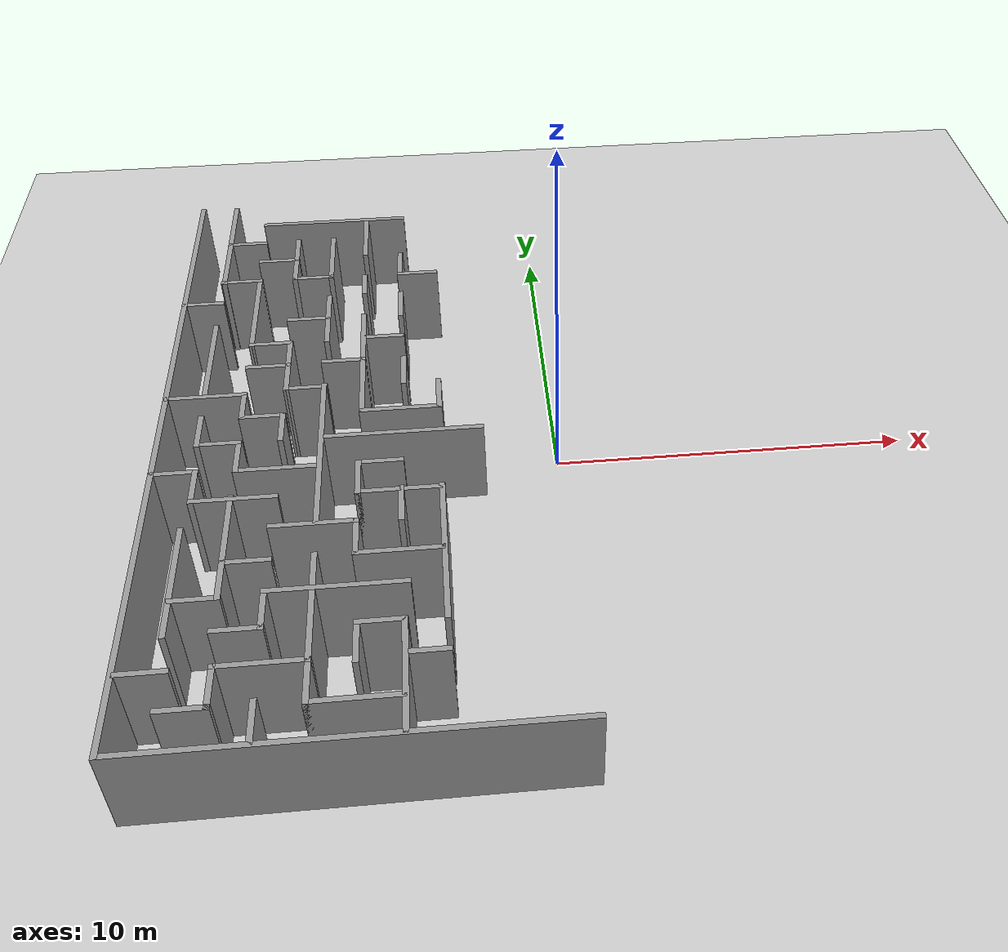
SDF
<sdf version="1.7">
 <world name="default">
  <model name="ground_plane">
   <static>1</static>
   <link name="link">
    <collision name="collision">
     <geometry><plane><normal>0 0 1</normal><size>100 100</size></plane></geometry>
     <surface><friction><ode><mu>100</mu><mu2>50</mu2></ode></friction></surface>
    </collision>
    <visual name="visual">
     <cast_shadows>0</cast_shadows>
     <geometry><plane><normal>0 0 1</normal><size>100 100</size></plane></geometry>
     <material>
      <script><uri>file://media/materials/scripts/gazebo.material</uri><name>Gazebo/Grey</name></script>
     </material>
    </visual>
   </link>
  </model>
  <model name="Maze_ej4">
   <pose>-0.00055 0.06164 0 0 -0 0</pose>
   <link name="Wall_100">
    <collision name="Wall_100_Collision">
     <geometry><box><size>1.25 0.15 2.5</size></box></geometry>
     <pose>0 0 1.25 0 -0 0</pose>
    </collision>
    <visual name="Wall_100_Visual">
     <pose>0 0 1.25 0 -0 0</pose>
     <geometry><box><size>1.25 0.15 2.5</size></box></geometry>
     <material>
      <script><uri>file://media/materials/scripts/gazebo.material</uri><name>Gazebo/Grey</name></script>
      <ambient>1 1 1 1</ambient>
     </material>
     <meta><layer>0</layer></meta>
    </visual>
    <pose>-7.51415 -6.98122 0 0 -0 -1.5708</pose>
   </link>
   <link name="Wall_101">
    <collision name="Wall_101_Collision">
     <geometry><box><size>1.25 0.15 2.5</size></box></geometry>
     <pose>0 0 1.25 0 -0 0</pose>
    </collision>
    <visual name="Wall_101_Visual">
     <pose>0 0 1.25 0 -0 0</pose>
     <geometry><box><size>1.25 0.15 2.5</size></box></geometry>
     <material>
      <script><uri>file://media/materials/scripts/gazebo.material</uri><name>Gazebo/Grey</name></script>
      <ambient>1 1 1 1</ambient>
     </material>
     <meta><layer>0</layer></meta>
    </visual>
    <pose>-8.06415 -7.53122 0 0 -0 3.14159</pose>
   </link>
   <link name="Wall_106">
    <collision name="Wall_106_Collision">
     <geometry><box><size>1 0.15 2.5</size></box></geometry>
     <pose>0 0 1.25 0 -0 0</pose>
    </collision>
    <visual name="Wall_106_Visual">
     <pose>0 0 1.25 0 -0 0</pose>
     <geometry><box><size>1 0.15 2.5</size></box></geometry>
     <material>
      <script><uri>file://media/materials/scripts/gazebo.material</uri><name>Gazebo/Grey</name></script>
      <ambient>1 1 1 1</ambient>
     </material>
     <meta><layer>0</layer></meta>
    </visual>
    <pose>-3.6867 -8.55744 0 0 -0 3.14159</pose>
   </link>
   <link name="Wall_17">
    <collision name="Wall_17_Collision">
     <geometry><box><size>21.5 0.15 2.5</size></box></geometry>
     <pose>0 0 1.25 0 -0 0</pose>
    </collision>
    <visual name="Wall_17_Visual">
     <pose>0 0 1.25 0 -0 0</pose>
     <geometry><box><size>21.5 0.15 2.5</size></box></geometry>
     <material>
      <script><uri>file://media/materials/scripts/gazebo.material</uri><name>Gazebo/Grey</name></script>
      <ambient>1 1 1 1</ambient>
     </material>
     <meta><layer>0</layer></meta>
    </visual>
    <pose>-10.6833 -0.028895 0 0 -0 -1.5708</pose>
   </link>
   <link name="Wall_18">
    <collision name="Wall_18_Collision">
     <geometry><box><size>10.75 0.15 2.5</size></box></geometry>
     <pose>0 0 1.25 0 -0 0</pose>
    </collision>
    <visual name="Wall_18_Visual">
     <pose>0 0 1.25 0 -0 0</pose>
     <geometry><box><size>10.75 0.15 2.5</size></box></geometry>
     <material>
      <script><uri>file://media/materials/scripts/gazebo.material</uri><name>Gazebo/Grey</name></script>
      <ambient>1 1 1 1</ambient>
     </material>
     <meta><layer>0</layer></meta>
    </visual>
    <pose>-5.38333 -10.7039 0 0 -0 0</pose>
   </link>
   <link name="Wall_185">
    <collision name="Wall_185_Collision">
     <geometry><box><size>1.25 0.15 2.5</size></box></geometry>
     <pose>0 0 1.25 0 -0 0</pose>
    </collision>
    <visual name="Wall_185_Visual">
     <pose>0 0 1.25 0 -0 0</pose>
     <geometry><box><size>1.25 0.15 2.5</size></box></geometry>
     <material>
      <script><uri>file://media/materials/scripts/gazebo.material</uri><name>Gazebo/Grey</name></script>
      <ambient>1 1 1 1</ambient>
     </material>
     <meta><layer>0</layer></meta>
    </visual>
    <pose>-4.84871 -2.18206 0 0 -0 3.14159</pose>
   </link>
   <link name="Wall_186">
    <collision name="Wall_186_Collision">
     <geometry><box><size>1.25 0.15 2.5</size></box></geometry>
     <pose>0 0 1.25 0 -0 0</pose>
    </collision>
    <visual name="Wall_186_Visual">
     <pose>0 0 1.25 0 -0 0</pose>
     <geometry><box><size>1.25 0.15 2.5</size></box></geometry>
     <material>
      <script><uri>file://media/materials/scripts/gazebo.material</uri><name>Gazebo/Grey</name></script>
      <ambient>1 1 1 1</ambient>
     </material>
     <meta><layer>0</layer></meta>
    </visual>
    <pose>-5.39871 -2.73206 0 0 -0 -1.5708</pose>
   </link>
   <link name="Wall_187">
    <collision name="Wall_187_Collision">
     <geometry><box><size>2.25 0.15 2.5</size></box></geometry>
     <pose>0 0 1.25 0 -0 0</pose>
    </collision>
    <visual name="Wall_187_Visual">
     <pose>0 0 1.25 0 -0 0</pose>
     <geometry><box><size>2.25 0.15 2.5</size></box></geometry>
     <material>
      <script><uri>file://media/materials/scripts/gazebo.material</uri><name>Gazebo/Grey</name></script>
      <ambient>1 1 1 1</ambient>
     </material>
     <meta><layer>0</layer></meta>
    </visual>
    <pose>-4.34871 -3.28206 0 0 -0 0</pose>
   </link>
   <link name="Wall_189">
    <collision name="Wall_189_Collision">
     <geometry><box><size>1.25 0.15 2.5</size></box></geometry>
     <pose>0 0 1.25 0 -0 0</pose>
    </collision>
    <visual name="Wall_189_Visual">
     <pose>0 0 1.25 0 -0 0</pose>
     <geometry><box><size>1.25 0.15 2.5</size></box></geometry>
     <material>
      <script><uri>file://media/materials/scripts/gazebo.material</uri><name>Gazebo/Grey</name></script>
      <ambient>1 1 1 1</ambient>
     </material>
     <meta><layer>0</layer></meta>
    </visual>
    <pose>-4.29871 -3.78608 0 0 -0 -1.5708</pose>
   </link>
   <link name="Wall_206">
    <collision name="Wall_206_Collision">
     <geometry><box><size>4.25 0.15 2.5</size></box></geometry>
     <pose>0 0 1.25 0 -0 0</pose>
    </collision>
    <visual name="Wall_206_Visual">
     <pose>0 0 1.25 0 -0 0</pose>
     <geometry><box><size>4.25 0.15 2.5</size></box></geometry>
     <material>
      <script><uri>file://media/materials/scripts/gazebo.material</uri><name>Gazebo/Grey</name></script>
      <ambient>1 1 1 1</ambient>
     </material>
     <meta><layer>0</layer></meta>
    </visual>
    <pose>-4.21368 -1.08331 0 0 -0 3.14159</pose>
   </link>
   <link name="Wall_212">
    <collision name="Wall_212_Collision">
     <geometry><box><size>4.5 0.15 2.5</size></box></geometry>
     <pose>0 0 1.25 0 -0 0</pose>
    </collision>
    <visual name="Wall_212_Visual">
     <pose>0 0 1.25 0 -0 0</pose>
     <geometry><box><size>4.5 0.15 2.5</size></box></geometry>
     <material>
      <script><uri>file://media/materials/scripts/gazebo.material</uri><name>Gazebo/Grey</name></script>
      <ambient>1 1 1 1</ambient>
     </material>
     <meta><layer>0</layer></meta>
    </visual>
    <pose>-5.34212 2.06902 0 0 -0 -1.5708</pose>
   </link>
   <link name="Wall_213">
    <collision name="Wall_213_Collision">
     <geometry><box><size>2.25 0.15 2.5</size></box></geometry>
     <pose>0 0 1.25 0 -0 0</pose>
    </collision>
    <visual name="Wall_213_Visual">
     <pose>0 0 1.25 0 -0 0</pose>
     <geometry><box><size>2.25 0.15 2.5</size></box></geometry>
     <material>
      <script><uri>file://media/materials/scripts/gazebo.material</uri><name>Gazebo/Grey</name></script>
      <ambient>1 1 1 1</ambient>
     </material>
     <meta><layer>0</layer></meta>
    </visual>
    <pose>-4.29212 -0.105982 0 0 -0 0</pose>
   </link>
   <link name="Wall_214">
    <collision name="Wall_214_Collision">
     <geometry><box><size>1.25 0.15 2.5</size></box></geometry>
     <pose>0 0 1.25 0 -0 0</pose>
    </collision>
    <visual name="Wall_214_Visual">
     <pose>0 0 1.25 0 -0 0</pose>
     <geometry><box><size>1.25 0.15 2.5</size></box></geometry>
     <material>
      <script><uri>file://media/materials/scripts/gazebo.material</uri><name>Gazebo/Grey</name></script>
      <ambient>1 1 1 1</ambient>
     </material>
     <meta><layer>0</layer></meta>
    </visual>
    <pose>-3.24212 0.444018 0 0 -0 1.5708</pose>
   </link>
   <link name="Wall_241">
    <collision name="Wall_241_Collision">
     <geometry><box><size>1.25 0.15 2.5</size></box></geometry>
     <pose>0 0 1.25 0 -0 0</pose>
    </collision>
    <visual name="Wall_241_Visual">
     <pose>0 0 1.25 0 -0 0</pose>
     <geometry><box><size>1.25 0.15 2.5</size></box></geometry>
     <material>
      <script><uri>file://media/materials/scripts/gazebo.material</uri><name>Gazebo/Grey</name></script>
      <ambient>1 1 1 1</ambient>
     </material>
     <meta><layer>0</layer></meta>
    </visual>
    <pose>-4.20011 1.54857 0 0 -0 -1.5708</pose>
   </link>
   <link name="Wall_243">
    <collision name="Wall_243_Collision">
     <geometry><box><size>1.25 0.15 2.5</size></box></geometry>
     <pose>0 0 1.25 0 -0 0</pose>
    </collision>
    <visual name="Wall_243_Visual">
     <pose>0 0 1.25 0 -0 0</pose>
     <geometry><box><size>1.25 0.15 2.5</size></box></geometry>
     <material>
      <script><uri>file://media/materials/scripts/gazebo.material</uri><name>Gazebo/Grey</name></script>
      <ambient>1 1 1 1</ambient>
     </material>
     <meta><layer>0</layer></meta>
    </visual>
    <pose>-4.79212 3.17924 0 0 -0 0</pose>
   </link>
   <link name="Wall_245">
    <collision name="Wall_245_Collision">
     <geometry><box><size>1.25 0.15 2.5</size></box></geometry>
     <pose>0 0 1.25 0 -0 0</pose>
    </collision>
    <visual name="Wall_245_Visual">
     <pose>0 0 1.25 0 -0 0</pose>
     <geometry><box><size>1.25 0.15 2.5</size></box></geometry>
     <material>
      <script><uri>file://media/materials/scripts/gazebo.material</uri><name>Gazebo/Grey</name></script>
      <ambient>1 1 1 1</ambient>
     </material>
     <meta><layer>0</layer></meta>
    </visual>
    <pose>-5.89212 2.14625 0 0 -0 3.14159</pose>
   </link>
   <link name="Wall_250">
    <collision name="Wall_250_Collision">
     <geometry><box><size>1.25 0.15 2.5</size></box></geometry>
     <pose>0 0 1.25 0 -0 0</pose>
    </collision>
    <visual name="Wall_250_Visual">
     <pose>0 0 1.25 0 -0 0</pose>
     <geometry><box><size>1.25 0.15 2.5</size></box></geometry>
     <material>
      <script><uri>file://media/materials/scripts/gazebo.material</uri><name>Gazebo/Grey</name></script>
      <ambient>1 1 1 1</ambient>
     </material>
     <meta><layer>0</layer></meta>
    </visual>
    <pose>-10.1353 5.2929 0 0 -0 3.14159</pose>
   </link>
   <link name="Wall_29">
    <collision name="Wall_29_Collision">
     <geometry><box><size>4.5 0.15 2.5</size></box></geometry>
     <pose>0 0 1.25 0 -0 0</pose>
    </collision>
    <visual name="Wall_29_Visual">
     <pose>0 0 1.25 0 -0 0</pose>
     <geometry><box><size>4.5 0.15 2.5</size></box></geometry>
     <material>
      <script><uri>file://media/materials/scripts/gazebo.material</uri><name>Gazebo/Grey</name></script>
      <ambient>1 1 1 1</ambient>
     </material>
     <meta><layer>0</layer></meta>
    </visual>
    <pose>-3.2617 -5.41689 0 0 -0 -1.5708</pose>
   </link>
   <link name="Wall_295">
    <collision name="Wall_295_Collision">
     <geometry><box><size>2.31157 0.15 2.5</size></box></geometry>
     <pose>0 0 1.25 0 -0 0</pose>
    </collision>
    <visual name="Wall_295_Visual">
     <pose>0 0 1.25 0 -0 0</pose>
     <geometry><box><size>2.31157 0.15 2.5</size></box></geometry>
     <material>
      <script><uri>file://media/materials/scripts/gazebo.material</uri><name>Gazebo/Grey</name></script>
      <ambient>1 1 1 1</ambient>
     </material>
     <meta><layer>0</layer></meta>
    </visual>
    <pose>-6.39101 4.21223 0 0 -0 -1.5708</pose>
   </link>
   <link name="Wall_299">
    <collision name="Wall_299_Collision">
     <geometry><box><size>1.25 0.15 2.5</size></box></geometry>
     <pose>0 0 1.25 0 -0 0</pose>
    </collision>
    <visual name="Wall_299_Visual">
     <pose>0 0 1.25 0 -0 0</pose>
     <geometry><box><size>1.25 0.15 2.5</size></box></geometry>
     <material>
      <script><uri>file://media/materials/scripts/gazebo.material</uri><name>Gazebo/Grey</name></script>
      <ambient>1 1 1 1</ambient>
     </material>
     <meta><layer>0</layer></meta>
    </visual>
    <pose>-6.97279 4.24402 0 0 -0 3.14159</pose>
   </link>
   <link name="Wall_301">
    <collision name="Wall_301_Collision">
     <geometry><box><size>1.25 0.15 2.5</size></box></geometry>
     <pose>0 0 1.25 0 -0 0</pose>
    </collision>
    <visual name="Wall_301_Visual">
     <pose>0 0 1.25 0 -0 0</pose>
     <geometry><box><size>1.25 0.15 2.5</size></box></geometry>
     <material>
      <script><uri>file://media/materials/scripts/gazebo.material</uri><name>Gazebo/Grey</name></script>
      <ambient>1 1 1 1</ambient>
     </material>
     <meta><layer>0</layer></meta>
    </visual>
    <pose>-9.08302 6.37357 0 0 -0 0</pose>
   </link>
   <link name="Wall_302">
    <collision name="Wall_302_Collision">
     <geometry><box><size>3.39201 0.15 2.5</size></box></geometry>
     <pose>0 0 1.25 0 -0 0</pose>
    </collision>
    <visual name="Wall_302_Visual">
     <pose>0 0 1.25 0 -0 0</pose>
     <geometry><box><size>3.39201 0.15 2.5</size></box></geometry>
     <material>
      <script><uri>file://media/materials/scripts/gazebo.material</uri><name>Gazebo/Grey</name></script>
      <ambient>1 1 1 1</ambient>
     </material>
     <meta><layer>0</layer></meta>
    </visual>
    <pose>-8.53473 4.75257 0 0 -0 -1.57186</pose>
   </link>
   <link name="Wall_303">
    <collision name="Wall_303_Collision">
     <geometry><box><size>1.25 0.15 2.5</size></box></geometry>
     <pose>0 0 1.25 0 -0 0</pose>
    </collision>
    <visual name="Wall_303_Visual">
     <pose>0 0 1.25 0 -0 0</pose>
     <geometry><box><size>1.25 0.15 2.5</size></box></geometry>
     <material>
      <script><uri>file://media/materials/scripts/gazebo.material</uri><name>Gazebo/Grey</name></script>
      <ambient>1 1 1 1</ambient>
     </material>
     <meta><layer>0</layer></meta>
    </visual>
    <pose>-7.98645 3.13156 0 0 -0 0</pose>
   </link>
   <link name="Wall_304">
    <collision name="Wall_304_Collision">
     <geometry><box><size>2.25 0.15 2.5</size></box></geometry>
     <pose>0 0 1.25 0 -0 0</pose>
    </collision>
    <visual name="Wall_304_Visual">
     <pose>0 0 1.25 0 -0 0</pose>
     <geometry><box><size>2.25 0.15 2.5</size></box></geometry>
     <material>
      <script><uri>file://media/materials/scripts/gazebo.material</uri><name>Gazebo/Grey</name></script>
      <ambient>1 1 1 1</ambient>
     </material>
     <meta><layer>0</layer></meta>
    </visual>
    <pose>-7.43645 2.08156 0 0 -0 -1.5708</pose>
   </link>
   <link name="Wall_305">
    <collision name="Wall_305_Collision">
     <geometry><box><size>1.21189 0.15 2.5</size></box></geometry>
     <pose>0 0 1.25 0 -0 0</pose>
    </collision>
    <visual name="Wall_305_Visual">
     <pose>0 0 1.25 0 -0 0</pose>
     <geometry><box><size>1.21189 0.15 2.5</size></box></geometry>
     <material>
      <script><uri>file://media/materials/scripts/gazebo.material</uri><name>Gazebo/Grey</name></script>
      <ambient>1 1 1 1</ambient>
     </material>
     <meta><layer>0</layer></meta>
    </visual>
    <pose>-6.90578 1.03268 0 0 -0 0.0021</pose>
   </link>
   <link name="Wall_307">
    <collision name="Wall_307_Collision">
     <geometry><box><size>1.25 0.15 2.5</size></box></geometry>
     <pose>0 0 1.25 0 -0 0</pose>
    </collision>
    <visual name="Wall_307_Visual">
     <pose>0 0 1.25 0 -0 0</pose>
     <geometry><box><size>1.25 0.15 2.5</size></box></geometry>
     <material>
      <script><uri>file://media/materials/scripts/gazebo.material</uri><name>Gazebo/Grey</name></script>
      <ambient>1 1 1 1</ambient>
     </material>
     <meta><layer>0</layer></meta>
    </visual>
    <pose>-8.00235 2.08268 0 0 -0 0</pose>
   </link>
   <link name="Wall_309">
    <collision name="Wall_309_Collision">
     <geometry><box><size>1.25 0.15 2.5</size></box></geometry>
     <pose>0 0 1.25 0 -0 0</pose>
    </collision>
    <visual name="Wall_309_Visual">
     <pose>0 0 1.25 0 -0 0</pose>
     <geometry><box><size>1.25 0.15 2.5</size></box></geometry>
     <material>
      <script><uri>file://media/materials/scripts/gazebo.material</uri><name>Gazebo/Grey</name></script>
      <ambient>1 1 1 1</ambient>
     </material>
     <meta><layer>0</layer></meta>
    </visual>
    <pose>-4.26145 4.7429 0 0 -0 -1.5708</pose>
   </link>
   <link name="Wall_311">
    <collision name="Wall_311_Collision">
     <geometry><box><size>4.39396 0.15 2.5</size></box></geometry>
     <pose>0 0 1.25 0 -0 0</pose>
    </collision>
    <visual name="Wall_311_Visual">
     <pose>0 0 1.25 0 -0 0</pose>
     <geometry><box><size>4.39396 0.15 2.5</size></box></geometry>
     <material>
      <script><uri>file://media/materials/scripts/gazebo.material</uri><name>Gazebo/Grey</name></script>
      <ambient>1 1 1 1</ambient>
     </material>
     <meta><layer>0</layer></meta>
    </visual>
    <pose>-9.60123 8.4634 0 0 -0 -1.5708</pose>
   </link>
   <link name="Wall_313">
    <collision name="Wall_313_Collision">
     <geometry><box><size>1.21525 0.15 2.5</size></box></geometry>
     <pose>0 0 1.25 0 -0 0</pose>
    </collision>
    <visual name="Wall_313_Visual">
     <pose>0 0 1.25 0 -0 0</pose>
     <geometry><box><size>1.21525 0.15 2.5</size></box></geometry>
     <material>
      <script><uri>file://media/materials/scripts/gazebo.material</uri><name>Gazebo/Grey</name></script>
      <ambient>1 1 1 1</ambient>
     </material>
     <meta><layer>0</layer></meta>
    </visual>
    <pose>-9.06884 8.47134 0 0 -0 3.14159</pose>
   </link>
   <link name="Wall_315">
    <collision name="Wall_315_Collision">
     <geometry><box><size>4.5 0.15 2.5</size></box></geometry>
     <pose>0 0 1.25 0 -0 0</pose>
    </collision>
    <visual name="Wall_315_Visual">
     <pose>0 0 1.25 0 -0 0</pose>
     <geometry><box><size>4.5 0.15 2.5</size></box></geometry>
     <material>
      <script><uri>file://media/materials/scripts/gazebo.material</uri><name>Gazebo/Grey</name></script>
      <ambient>1 1 1 1</ambient>
     </material>
     <meta><layer>0</layer></meta>
    </visual>
    <pose>-6.37735 9.55201 0 0 -0 0</pose>
   </link>
   <link name="Wall_35">
    <collision name="Wall_35_Collision">
     <geometry><box><size>5.5 0.15 2.5</size></box></geometry>
     <pose>0 0 1.25 0 -0 0</pose>
    </collision>
    <visual name="Wall_35_Visual">
     <pose>0 0 1.25 0 -0 0</pose>
     <geometry><box><size>5.5 0.15 2.5</size></box></geometry>
     <material>
      <script><uri>file://media/materials/scripts/gazebo.material</uri><name>Gazebo/Grey</name></script>
      <ambient>1 1 1 1</ambient>
     </material>
     <meta><layer>0</layer></meta>
    </visual>
    <pose>-6.39652 -1.60992 0 0 -0 -1.5708</pose>
   </link>
   <link name="Wall_37">
    <collision name="Wall_37_Collision">
     <geometry><box><size>2.25 0.15 2.5</size></box></geometry>
     <pose>0 0 1.25 0 -0 0</pose>
    </collision>
    <visual name="Wall_37_Visual">
     <pose>0 0 1.25 0 -0 0</pose>
     <geometry><box><size>2.25 0.15 2.5</size></box></geometry>
     <material>
      <script><uri>file://media/materials/scripts/gazebo.material</uri><name>Gazebo/Grey</name></script>
      <ambient>1 1 1 1</ambient>
     </material>
     <meta><layer>0</layer></meta>
    </visual>
    <pose>-6.46415 -4.305 0 0 -0 0</pose>
   </link>
   <link name="Wall_39">
    <collision name="Wall_39_Collision">
     <geometry><box><size>1.25 0.15 2.5</size></box></geometry>
     <pose>0 0 1.25 0 -0 0</pose>
    </collision>
    <visual name="Wall_39_Visual">
     <pose>0 0 1.25 0 -0 0</pose>
     <geometry><box><size>1.25 0.15 2.5</size></box></geometry>
     <material>
      <script><uri>file://media/materials/scripts/gazebo.material</uri><name>Gazebo/Grey</name></script>
      <ambient>1 1 1 1</ambient>
     </material>
     <meta><layer>0</layer></meta>
    </visual>
    <pose>-5.41415 -4.855 0 0 -0 -1.5708</pose>
   </link>
   <link name="Wall_40">
    <collision name="Wall_40_Collision">
     <geometry><box><size>2.25 0.15 2.5</size></box></geometry>
     <pose>0 0 1.25 0 -0 0</pose>
    </collision>
    <visual name="Wall_40_Visual">
     <pose>0 0 1.25 0 -0 0</pose>
     <geometry><box><size>2.25 0.15 2.5</size></box></geometry>
     <material>
      <script><uri>file://media/materials/scripts/gazebo.material</uri><name>Gazebo/Grey</name></script>
      <ambient>1 1 1 1</ambient>
     </material>
     <meta><layer>0</layer></meta>
    </visual>
    <pose>-4.36415 -5.405 0 0 -0 0</pose>
   </link>
   <link name="Wall_42">
    <collision name="Wall_42_Collision">
     <geometry><box><size>4.5 0.15 2.5</size></box></geometry>
     <pose>0 0 1.25 0 -0 0</pose>
    </collision>
    <visual name="Wall_42_Visual">
     <pose>0 0 1.25 0 -0 0</pose>
     <geometry><box><size>4.5 0.15 2.5</size></box></geometry>
     <material>
      <script><uri>file://media/materials/scripts/gazebo.material</uri><name>Gazebo/Grey</name></script>
      <ambient>1 1 1 1</ambient>
     </material>
     <meta><layer>0</layer></meta>
    </visual>
    <pose>-6.39652 -7.54311 0 0 -0 -1.5708</pose>
   </link>
   <link name="Wall_43">
    <collision name="Wall_43_Collision">
     <geometry><box><size>2.25 0.15 2.5</size></box></geometry>
     <pose>0 0 1.25 0 -0 0</pose>
    </collision>
    <visual name="Wall_43_Visual">
     <pose>0 0 1.25 0 -0 0</pose>
     <geometry><box><size>2.25 0.15 2.5</size></box></geometry>
     <material>
      <script><uri>file://media/materials/scripts/gazebo.material</uri><name>Gazebo/Grey</name></script>
      <ambient>1 1 1 1</ambient>
     </material>
     <meta><layer>0</layer></meta>
    </visual>
    <pose>-5.34652 -9.71811 0 0 -0 0</pose>
   </link>
   <link name="Wall_45">
    <collision name="Wall_45_Collision">
     <geometry><box><size>3.25 0.15 2.5</size></box></geometry>
     <pose>0 0 1.25 0 -0 0</pose>
    </collision>
    <visual name="Wall_45_Visual">
     <pose>0 0 1.25 0 -0 0</pose>
     <geometry><box><size>3.25 0.15 2.5</size></box></geometry>
     <material>
      <script><uri>file://media/materials/scripts/gazebo.material</uri><name>Gazebo/Grey</name></script>
      <ambient>1 1 1 1</ambient>
     </material>
     <meta><layer>0</layer></meta>
    </visual>
    <pose>-4.24304 -9.13366 0 0 -0 1.5708</pose>
   </link>
   <link name="Wall_48">
    <collision name="Wall_48_Collision">
     <geometry><box><size>1.25 0.15 2.5</size></box></geometry>
     <pose>0 0 1.25 0 -0 0</pose>
    </collision>
    <visual name="Wall_48_Visual">
     <pose>0 0 1.25 0 -0 0</pose>
     <geometry><box><size>1.25 0.15 2.5</size></box></geometry>
     <material>
      <script><uri>file://media/materials/scripts/gazebo.material</uri><name>Gazebo/Grey</name></script>
      <ambient>1 1 1 1</ambient>
     </material>
     <meta><layer>0</layer></meta>
    </visual>
    <pose>-4.79304 -7.58366 0 0 -0 3.14159</pose>
   </link>
   <link name="Wall_49">
    <collision name="Wall_49_Collision">
     <geometry><box><size>1.25 0.15 2.5</size></box></geometry>
     <pose>0 0 1.25 0 -0 0</pose>
    </collision>
    <visual name="Wall_49_Visual">
     <pose>0 0 1.25 0 -0 0</pose>
     <geometry><box><size>1.25 0.15 2.5</size></box></geometry>
     <material>
      <script><uri>file://media/materials/scripts/gazebo.material</uri><name>Gazebo/Grey</name></script>
      <ambient>1 1 1 1</ambient>
     </material>
     <meta><layer>0</layer></meta>
    </visual>
    <pose>-5.34304 -8.13366 0 0 -0 -1.5708</pose>
   </link>
   <link name="Wall_60">
    <collision name="Wall_60_Collision">
     <geometry><box><size>1.25 0.15 2.5</size></box></geometry>
     <pose>0 0 1.25 0 -0 0</pose>
    </collision>
    <visual name="Wall_60_Visual">
     <pose>0 0 1.25 0 -0 0</pose>
     <geometry><box><size>1.25 0.15 2.5</size></box></geometry>
     <material>
      <script><uri>file://media/materials/scripts/gazebo.material</uri><name>Gazebo/Grey</name></script>
      <ambient>1 1 1 1</ambient>
     </material>
     <meta><layer>0</layer></meta>
    </visual>
    <pose>-10.0444 -8.5847 0 0 -0 0</pose>
   </link>
   <link name="Wall_62">
    <collision name="Wall_62_Collision">
     <geometry><box><size>3.5 0.15 2.5</size></box></geometry>
     <pose>0 0 1.25 0 -0 0</pose>
    </collision>
    <visual name="Wall_62_Visual">
     <pose>0 0 1.25 0 -0 0</pose>
     <geometry><box><size>3.5 0.15 2.5</size></box></geometry>
     <material>
      <script><uri>file://media/materials/scripts/gazebo.material</uri><name>Gazebo/Grey</name></script>
      <ambient>1 1 1 1</ambient>
     </material>
     <meta><layer>0</layer></meta>
    </visual>
    <pose>-9.69489 -5.89822 0 0 -0 -1.5708</pose>
   </link>
   <link name="Wall_64">
    <collision name="Wall_64_Collision">
     <geometry><box><size>3.5 0.15 2.5</size></box></geometry>
     <pose>0 0 1.25 0 -0 0</pose>
    </collision>
    <visual name="Wall_64_Visual">
     <pose>0 0 1.25 0 -0 0</pose>
     <geometry><box><size>3.5 0.15 2.5</size></box></geometry>
     <material>
      <script><uri>file://media/materials/scripts/gazebo.material</uri><name>Gazebo/Grey</name></script>
      <ambient>1 1 1 1</ambient>
     </material>
     <meta><layer>0</layer></meta>
    </visual>
    <pose>-8.57726 -4.86237 0 0 -0 -1.5708</pose>
   </link>
   <link name="Wall_65">
    <collision name="Wall_65_Collision">
     <geometry><box><size>1.25 0.15 2.5</size></box></geometry>
     <pose>0 0 1.25 0 -0 0</pose>
    </collision>
    <visual name="Wall_65_Visual">
     <pose>0 0 1.25 0 -0 0</pose>
     <geometry><box><size>1.25 0.15 2.5</size></box></geometry>
     <material>
      <script><uri>file://media/materials/scripts/gazebo.material</uri><name>Gazebo/Grey</name></script>
      <ambient>1 1 1 1</ambient>
     </material>
     <meta><layer>0</layer></meta>
    </visual>
    <pose>-9.12726 -6.53737 0 0 -0 3.14159</pose>
   </link>
   <link name="Wall_67">
    <collision name="Wall_67_Collision">
     <geometry><box><size>1.25 0.15 2.5</size></box></geometry>
     <pose>0 0 1.25 0 -0 0</pose>
    </collision>
    <visual name="Wall_67_Visual">
     <pose>0 0 1.25 0 -0 0</pose>
     <geometry><box><size>1.25 0.15 2.5</size></box></geometry>
     <material>
      <script><uri>file://media/materials/scripts/gazebo.material</uri><name>Gazebo/Grey</name></script>
      <ambient>1 1 1 1</ambient>
     </material>
     <meta><layer>0</layer></meta>
    </visual>
    <pose>-8.02726 -5.42263 0 0 -0 0</pose>
   </link>
   <link name="Wall_69">
    <collision name="Wall_69_Collision">
     <geometry><box><size>3.5 0.15 2.5</size></box></geometry>
     <pose>0 0 1.25 0 -0 0</pose>
    </collision>
    <visual name="Wall_69_Visual">
     <pose>0 0 1.25 0 -0 0</pose>
     <geometry><box><size>3.5 0.15 2.5</size></box></geometry>
     <material>
      <script><uri>file://media/materials/scripts/gazebo.material</uri><name>Gazebo/Grey</name></script>
      <ambient>1 1 1 1</ambient>
     </material>
     <meta><layer>0</layer></meta>
    </visual>
    <pose>-5.83915 -6.43122 0 0 -0 0</pose>
   </link>
   <link name="Wall_71">
    <collision name="Wall_71_Collision">
     <geometry><box><size>2.25 0.15 2.5</size></box></geometry>
     <pose>0 0 1.25 0 -0 0</pose>
    </collision>
    <visual name="Wall_71_Visual">
     <pose>0 0 1.25 0 -0 0</pose>
     <geometry><box><size>2.25 0.15 2.5</size></box></geometry>
     <material>
      <script><uri>file://media/materials/scripts/gazebo.material</uri><name>Gazebo/Grey</name></script>
      <ambient>1 1 1 1</ambient>
     </material>
     <meta><layer>0</layer></meta>
    </visual>
    <pose>-8.50963 -3.24189 0 0 -0 3.14159</pose>
   </link>
   <link name="Wall_72">
    <collision name="Wall_72_Collision">
     <geometry><box><size>1.25 0.15 2.5</size></box></geometry>
     <pose>0 0 1.25 0 -0 0</pose>
    </collision>
    <visual name="Wall_72_Visual">
     <pose>0 0 1.25 0 -0 0</pose>
     <geometry><box><size>1.25 0.15 2.5</size></box></geometry>
     <material>
      <script><uri>file://media/materials/scripts/gazebo.material</uri><name>Gazebo/Grey</name></script>
      <ambient>1 1 1 1</ambient>
     </material>
     <meta><layer>0</layer></meta>
    </visual>
    <pose>-9.55963 -2.69189 0 0 -0 1.5708</pose>
   </link>
   <link name="Wall_73">
    <collision name="Wall_73_Collision">
     <geometry><box><size>1.25 0.15 2.5</size></box></geometry>
     <pose>0 0 1.25 0 -0 0</pose>
    </collision>
    <visual name="Wall_73_Visual">
     <pose>0 0 1.25 0 -0 0</pose>
     <geometry><box><size>1.25 0.15 2.5</size></box></geometry>
     <material>
      <script><uri>file://media/materials/scripts/gazebo.material</uri><name>Gazebo/Grey</name></script>
      <ambient>1 1 1 1</ambient>
     </material>
     <meta><layer>0</layer></meta>
    </visual>
    <pose>-10.1096 -2.14189 0 0 -0 3.14159</pose>
   </link>
   <link name="Wall_75">
    <collision name="Wall_75_Collision">
     <geometry><box><size>1.25 0.15 2.5</size></box></geometry>
     <pose>0 0 1.25 0 -0 0</pose>
    </collision>
    <visual name="Wall_75_Visual">
     <pose>0 0 1.25 0 -0 0</pose>
     <geometry><box><size>1.25 0.15 2.5</size></box></geometry>
     <material>
      <script><uri>file://media/materials/scripts/gazebo.material</uri><name>Gazebo/Grey</name></script>
      <ambient>1 1 1 1</ambient>
     </material>
     <meta><layer>0</layer></meta>
    </visual>
    <pose>-9.64037 -0.548034 0 0 -0 -1.5708</pose>
   </link>
   <link name="Wall_76">
    <collision name="Wall_76_Collision">
     <geometry><box><size>1.25 0.15 2.5</size></box></geometry>
     <pose>0 0 1.25 0 -0 0</pose>
    </collision>
    <visual name="Wall_76_Visual">
     <pose>0 0 1.25 0 -0 0</pose>
     <geometry><box><size>1.25 0.15 2.5</size></box></geometry>
     <material>
      <script><uri>file://media/materials/scripts/gazebo.material</uri><name>Gazebo/Grey</name></script>
      <ambient>1 1 1 1</ambient>
     </material>
     <meta><layer>0</layer></meta>
    </visual>
    <pose>-9.09037 -1.09803 0 0 -0 0</pose>
   </link>
   <link name="Wall_77">
    <collision name="Wall_77_Collision">
     <geometry><box><size>1.25 0.15 2.5</size></box></geometry>
     <pose>0 0 1.25 0 -0 0</pose>
    </collision>
    <visual name="Wall_77_Visual">
     <pose>0 0 1.25 0 -0 0</pose>
     <geometry><box><size>1.25 0.15 2.5</size></box></geometry>
     <material>
      <script><uri>file://media/materials/scripts/gazebo.material</uri><name>Gazebo/Grey</name></script>
      <ambient>1 1 1 1</ambient>
     </material>
     <meta><layer>0</layer></meta>
    </visual>
    <pose>-8.54037 -1.64803 0 0 -0 -1.5708</pose>
   </link>
   <link name="Wall_78">
    <collision name="Wall_78_Collision">
     <geometry><box><size>2.25 0.15 2.5</size></box></geometry>
     <pose>0 0 1.25 0 -0 0</pose>
    </collision>
    <visual name="Wall_78_Visual">
     <pose>0 0 1.25 0 -0 0</pose>
     <geometry><box><size>2.25 0.15 2.5</size></box></geometry>
     <material>
      <script><uri>file://media/materials/scripts/gazebo.material</uri><name>Gazebo/Grey</name></script>
      <ambient>1 1 1 1</ambient>
     </material>
     <meta><layer>0</layer></meta>
    </visual>
    <pose>-7.49037 -2.19803 0 0 -0 0</pose>
   </link>
   <link name="Wall_80">
    <collision name="Wall_80_Collision">
     <geometry><box><size>1.14303 0.15 2.5</size></box></geometry>
     <pose>0 0 1.25 0 -0 0</pose>
    </collision>
    <visual name="Wall_80_Visual">
     <pose>0 0 1.25 0 -0 0</pose>
     <geometry><box><size>1.14303 0.15 2.5</size></box></geometry>
     <material>
      <script><uri>file://media/materials/scripts/gazebo.material</uri><name>Gazebo/Grey</name></script>
      <ambient>1 1 1 1</ambient>
     </material>
     <meta><layer>0</layer></meta>
    </visual>
    <pose>-7.45963 -0.56463 0 0 -0 1.5708</pose>
   </link>
   <link name="Wall_81">
    <collision name="Wall_81_Collision">
     <geometry><box><size>1.25 0.15 2.5</size></box></geometry>
     <pose>0 0 1.25 0 -0 0</pose>
    </collision>
    <visual name="Wall_81_Visual">
     <pose>0 0 1.25 0 -0 0</pose>
     <geometry><box><size>1.25 0.15 2.5</size></box></geometry>
     <material>
      <script><uri>file://media/materials/scripts/gazebo.material</uri><name>Gazebo/Grey</name></script>
      <ambient>1 1 1 1</ambient>
     </material>
     <meta><layer>0</layer></meta>
    </visual>
    <pose>-8.00963 -0.084008 0 0 -0 3.14159</pose>
   </link>
   <link name="Wall_82">
    <collision name="Wall_82_Collision">
     <geometry><box><size>1.10697 0.15 2.5</size></box></geometry>
     <pose>0 0 1.25 0 -0 0</pose>
    </collision>
    <visual name="Wall_82_Visual">
     <pose>0 0 1.25 0 -0 0</pose>
     <geometry><box><size>1.10697 0.15 2.5</size></box></geometry>
     <material>
      <script><uri>file://media/materials/scripts/gazebo.material</uri><name>Gazebo/Grey</name></script>
      <ambient>1 1 1 1</ambient>
     </material>
     <meta><layer>0</layer></meta>
    </visual>
    <pose>-8.55963 0.41037 0 0 -0 1.5708</pose>
   </link>
   <link name="Wall_83">
    <collision name="Wall_83_Collision">
     <geometry><box><size>2.25 0.15 2.5</size></box></geometry>
     <pose>0 0 1.25 0 -0 0</pose>
    </collision>
    <visual name="Wall_83_Visual">
     <pose>0 0 1.25 0 -0 0</pose>
     <geometry><box><size>2.25 0.15 2.5</size></box></geometry>
     <material>
      <script><uri>file://media/materials/scripts/gazebo.material</uri><name>Gazebo/Grey</name></script>
      <ambient>1 1 1 1</ambient>
     </material>
     <meta><layer>0</layer></meta>
    </visual>
    <pose>-9.60963 0.888855 0 0 -0 3.14159</pose>
   </link>
   <link name="Wall_837">
    <collision name="Wall_837_Collision">
     <geometry><box><size>1.25 0.15 2.5</size></box></geometry>
     <pose>0 0 1.25 0 -0 0</pose>
    </collision>
    <visual name="Wall_837_Visual">
     <pose>0 0 1.25 0 -0 0</pose>
     <geometry><box><size>1.25 0.15 2.5</size></box></geometry>
     <material>
      <script><uri>file://media/materials/scripts/gazebo.material</uri><name>Gazebo/Grey</name></script>
      <ambient>1 1 1 1</ambient>
     </material>
     <meta><layer>0</layer></meta>
    </visual>
    <pose>-8.02043 7.42159 0 0 -0 0</pose>
   </link>
   <link name="Wall_839">
    <collision name="Wall_839_Collision">
     <geometry><box><size>2.25 0.15 2.5</size></box></geometry>
     <pose>0 0 1.25 0 -0 0</pose>
    </collision>
    <visual name="Wall_839_Visual">
     <pose>0 0 1.25 0 -0 0</pose>
     <geometry><box><size>2.25 0.15 2.5</size></box></geometry>
     <material>
      <script><uri>file://media/materials/scripts/gazebo.material</uri><name>Gazebo/Grey</name></script>
      <ambient>1 1 1 1</ambient>
     </material>
     <meta><layer>0</layer></meta>
    </visual>
    <pose>-7.47122 7.43107 0 0 -0 -1.5708</pose>
   </link>
   <link name="Wall_840">
    <collision name="Wall_840_Collision">
     <geometry><box><size>1.25 0.15 2.5</size></box></geometry>
     <pose>0 0 1.25 0 -0 0</pose>
    </collision>
    <visual name="Wall_840_Visual">
     <pose>0 0 1.25 0 -0 0</pose>
     <geometry><box><size>1.25 0.15 2.5</size></box></geometry>
     <material>
      <script><uri>file://media/materials/scripts/gazebo.material</uri><name>Gazebo/Grey</name></script>
      <ambient>1 1 1 1</ambient>
     </material>
     <meta><layer>0</layer></meta>
    </visual>
    <pose>-6.92122 6.38108 0 0 -0 0</pose>
   </link>
   <link name="Wall_841">
    <collision name="Wall_841_Collision">
     <geometry><box><size>2.25 0.15 2.5</size></box></geometry>
     <pose>0 0 1.25 0 -0 0</pose>
    </collision>
    <visual name="Wall_841_Visual">
     <pose>0 0 1.25 0 -0 0</pose>
     <geometry><box><size>2.25 0.15 2.5</size></box></geometry>
     <material>
      <script><uri>file://media/materials/scripts/gazebo.material</uri><name>Gazebo/Grey</name></script>
      <ambient>1 1 1 1</ambient>
     </material>
     <meta><layer>0</layer></meta>
    </visual>
    <pose>-6.37122 7.43107 0 0 -0 1.5708</pose>
   </link>
   <link name="Wall_845">
    <collision name="Wall_845_Collision">
     <geometry><box><size>2 0.15 2.5</size></box></geometry>
     <pose>0 0 1.25 0 -0 0</pose>
    </collision>
    <visual name="Wall_845_Visual">
     <pose>0 0 1.25 0 -0 0</pose>
     <geometry><box><size>2 0.15 2.5</size></box></geometry>
     <material>
      <script><uri>file://media/materials/scripts/gazebo.material</uri><name>Gazebo/Grey</name></script>
      <ambient>1 1 1 1</ambient>
     </material>
     <meta><layer>0</layer></meta>
    </visual>
    <pose>-5.33901 8.46988 0 0 -0 -1.5708</pose>
   </link>
   <link name="Wall_847">
    <collision name="Wall_847_Collision">
     <geometry><box><size>1 0.15 2.5</size></box></geometry>
     <pose>0 0 1.25 0 -0 0</pose>
    </collision>
    <visual name="Wall_847_Visual">
     <pose>0 0 1.25 0 -0 0</pose>
     <geometry><box><size>1 0.15 2.5</size></box></geometry>
     <material>
      <script><uri>file://media/materials/scripts/gazebo.material</uri><name>Gazebo/Grey</name></script>
      <ambient>1 1 1 1</ambient>
     </material>
     <meta><layer>0</layer></meta>
    </visual>
    <pose>-5.33901 5.87331 0 0 -0 1.5708</pose>
   </link>
   <link name="Wall_849">
    <collision name="Wall_849_Collision">
     <geometry><box><size>1.22359 0.15 2.5</size></box></geometry>
     <pose>0 0 1.25 0 -0 0</pose>
    </collision>
    <visual name="Wall_849_Visual">
     <pose>0 0 1.25 0 -0 0</pose>
     <geometry><box><size>1.22359 0.15 2.5</size></box></geometry>
     <material>
      <script><uri>file://media/materials/scripts/gazebo.material</uri><name>Gazebo/Grey</name></script>
      <ambient>1 1 1 1</ambient>
     </material>
     <meta><layer>0</layer></meta>
    </visual>
    <pose>-3.74356 6.33563 0 0 -0 3.14159</pose>
   </link>
   <link name="Wall_85">
    <collision name="Wall_85_Collision">
     <geometry><box><size>3.25 0.15 2.5</size></box></geometry>
     <pose>0 0 1.25 0 -0 0</pose>
    </collision>
    <visual name="Wall_85_Visual">
     <pose>0 0 1.25 0 -0 0</pose>
     <geometry><box><size>3.25 0.15 2.5</size></box></geometry>
     <material>
      <script><uri>file://media/materials/scripts/gazebo.material</uri><name>Gazebo/Grey</name></script>
      <ambient>1 1 1 1</ambient>
     </material>
     <meta><layer>0</layer></meta>
    </visual>
    <pose>-9.64037 2.56811 0 0 -0 -1.5708</pose>
   </link>
   <link name="Wall_850">
    <collision name="Wall_850_Collision">
     <geometry><box><size>1.23708 0.15 2.5</size></box></geometry>
     <pose>0 0 1.25 0 -0 0</pose>
    </collision>
    <visual name="Wall_850_Visual">
     <pose>0 0 1.25 0 -0 0</pose>
     <geometry><box><size>1.23708 0.15 2.5</size></box></geometry>
     <material>
      <script><uri>file://media/materials/scripts/gazebo.material</uri><name>Gazebo/Grey</name></script>
      <ambient>1 1 1 1</ambient>
     </material>
     <meta><layer>0</layer></meta>
    </visual>
    <pose>-4.26708 6.89225 0 0 -0 1.54643</pose>
   </link>
   <link name="Wall_94">
    <collision name="Wall_94_Collision">
     <geometry><box><size>2.25 0.15 2.5</size></box></geometry>
     <pose>0 0 1.25 0 -0 0</pose>
    </collision>
    <visual name="Wall_94_Visual">
     <pose>0 0 1.25 0 -0 0</pose>
     <geometry><box><size>2.25 0.15 2.5</size></box></geometry>
     <material>
      <script><uri>file://media/materials/scripts/gazebo.material</uri><name>Gazebo/Grey</name></script>
      <ambient>1 1 1 1</ambient>
     </material>
     <meta><layer>0</layer></meta>
    </visual>
    <pose>-7.44652 -8.55744 0 0 -0 3.14159</pose>
   </link>
   <link name="Wall_95">
    <collision name="Wall_95_Collision">
     <geometry><box><size>1.25 0.15 2.5</size></box></geometry>
     <pose>0 0 1.25 0 -0 0</pose>
    </collision>
    <visual name="Wall_95_Visual">
     <pose>0 0 1.25 0 -0 0</pose>
     <geometry><box><size>1.25 0.15 2.5</size></box></geometry>
     <material>
      <script><uri>file://media/materials/scripts/gazebo.material</uri><name>Gazebo/Grey</name></script>
      <ambient>1 1 1 1</ambient>
     </material>
     <meta><layer>0</layer></meta>
    </visual>
    <pose>-8.49652 -9.10744 0 0 -0 -1.5708</pose>
   </link>
   <link name="Wall_96">
    <collision name="Wall_96_Collision">
     <geometry><box><size>1.25 0.15 2.5</size></box></geometry>
     <pose>0 0 1.25 0 -0 0</pose>
    </collision>
    <visual name="Wall_96_Visual">
     <pose>0 0 1.25 0 -0 0</pose>
     <geometry><box><size>1.25 0.15 2.5</size></box></geometry>
     <material>
      <script><uri>file://media/materials/scripts/gazebo.material</uri><name>Gazebo/Grey</name></script>
      <ambient>1 1 1 1</ambient>
     </material>
     <meta><layer>0</layer></meta>
    </visual>
    <pose>-9.04652 -9.65744 0 0 -0 3.14159</pose>
   </link>
   <link name="Wall_98">
    <collision name="Wall_98_Collision">
     <geometry><box><size>1.25 0.15 2.5</size></box></geometry>
     <pose>0 0 1.25 0 -0 0</pose>
    </collision>
    <visual name="Wall_98_Visual">
     <pose>0 0 1.25 0 -0 0</pose>
     <geometry><box><size>1.25 0.15 2.5</size></box></geometry>
     <material>
      <script><uri>file://media/materials/scripts/gazebo.material</uri><name>Gazebo/Grey</name></script>
      <ambient>1 1 1 1</ambient>
     </material>
     <meta><layer>0</layer></meta>
    </visual>
    <pose>-7.51415 -10.1433 0 0 -0 -1.5708</pose>
   </link>
   <static>1</static>
  </model>
 </world>
</sdf>
